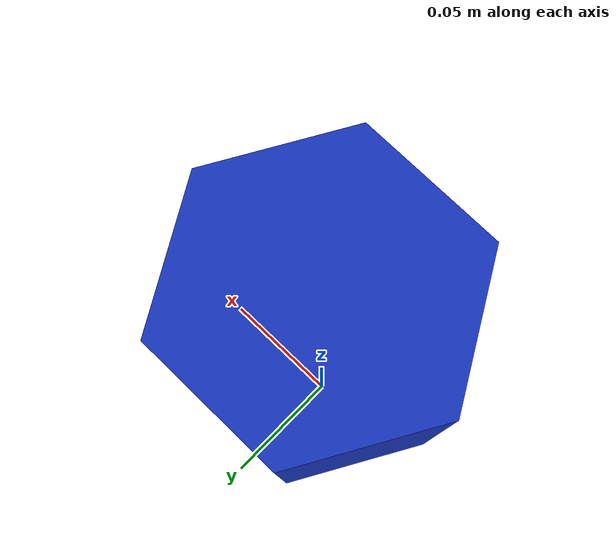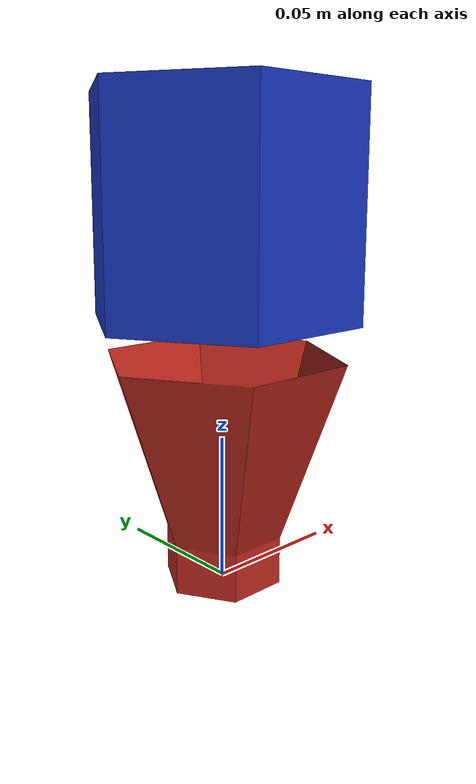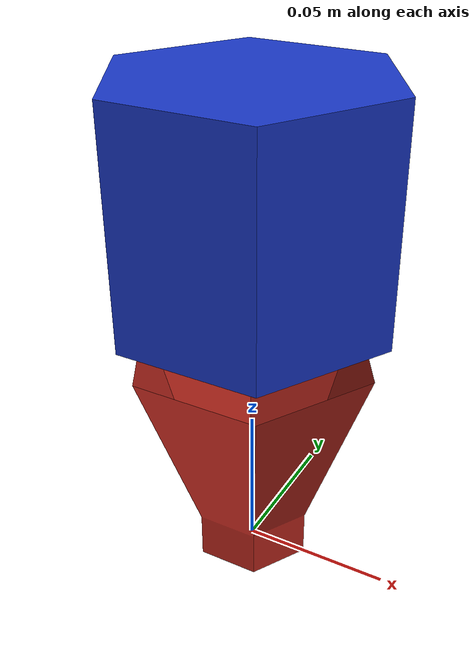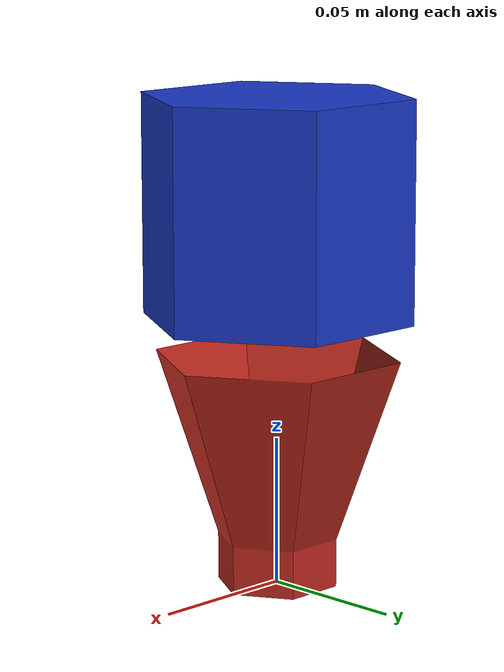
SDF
<?xml version="1.0" ?>
<sdf version="1.7">
  <model name="pin-rb">
    <static>false</static>
    <link name="link">
      <pose>0 0 0 0 0 0</pose>
      <velocity_decay>
        <linear>0.4</linear>
      </velocity_decay>
      <inertial>
        <pose>0 0 0.0825 0 0 0</pose>
        <mass>0.073</mass>
        <inertia>
          <ixx>0.000206</ixx>
          <iyy>0.000206</iyy>
          <izz>0.000081</izz>
        </inertia>
      </inertial>
      <visual name="bottom_half">
        <geometry>
          <mesh>
            <uri>model://pin-rb/meshes/pin-bottom.stl</uri>
          </mesh>
        </geometry>
        <material>
        <ambient>0.75 0.16 0.12 1</ambient>
        <diffuse>0.75 0.16 0.12 1</diffuse>
        <specular>0.1 0.1 0.1 1.0</specular>
        <emissive>0 0 0 1</emissive>
      </material>
      </visual>
      <visual name="top_half">
        <pose>0 0 0.0907 0 0 0</pose>
        <geometry>
          <mesh>
            <uri>model://pin-rb/meshes/pin-top.stl</uri>
          </mesh>
        </geometry>
        <material>
        <ambient>0.1 0.22 0.78 1</ambient>
        <diffuse>0.1 0.22 0.78 1</diffuse>
        <specular>0.1 0.1 0.1 1.0</specular>
        <emissive>0 0 0 1</emissive>
      </material>
      </visual>
      <collision name="collision">
        <pose>0 0 0.0825 0 0 0</pose>
        <geometry>
          <cylinder>
            <radius>0.047</radius>
            <length>0.165</length>
          </cylinder>
        </geometry>
        <surface>
          <friction>
            <ode>
              <mu>0.6</mu>
              <mu2>0.6</mu2>
            </ode>
          </friction>
        </surface>
      </collision>
    </link>
    <plugin filename="gz-sim-pose-publisher-system" name="gz::sim::systems::PosePublisher">
      <publish_link_pose>false</publish_link_pose>
      <publish_visual_pose>false</publish_visual_pose>
      <publish_collision_pose>false</publish_collision_pose>
      <publish_sensor_pose>false</publish_sensor_pose>
      <publish_model_pose>true</publish_model_pose>
      <publish_nested_model_pose>true</publish_nested_model_pose>
      <use_pose_vector_msg>false</use_pose_vector_msg>
      <update_frequency>20</update_frequency>
      <static_publisher>false</static_publisher>
      <static_update_frequency>1</static_update_frequency>
    </plugin>
    <plugin filename="rollingFriction" name="rolling_friction::RollingFrictionPlugin">
      <link_name>link</link_name>
      <coefficient>0.01</coefficient>
    </plugin>
  </model>
</sdf>
